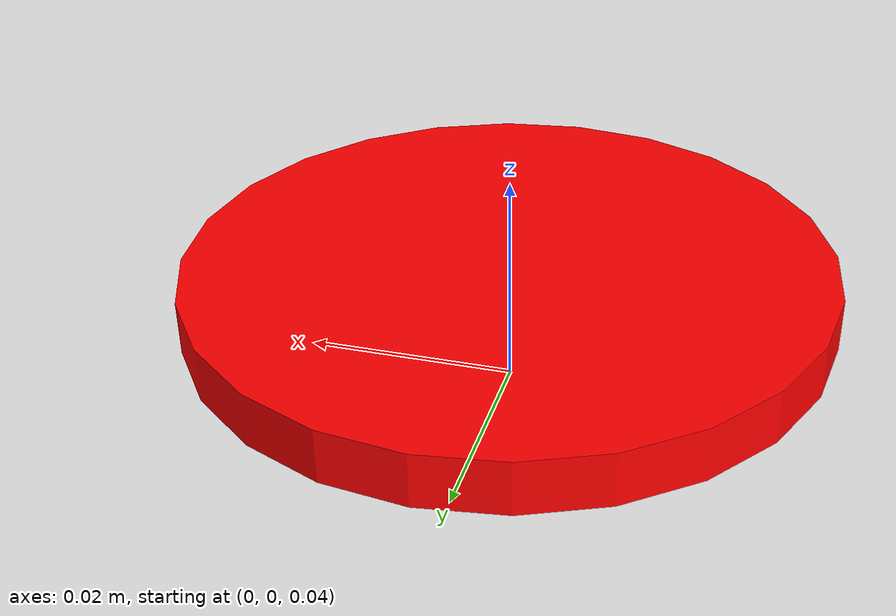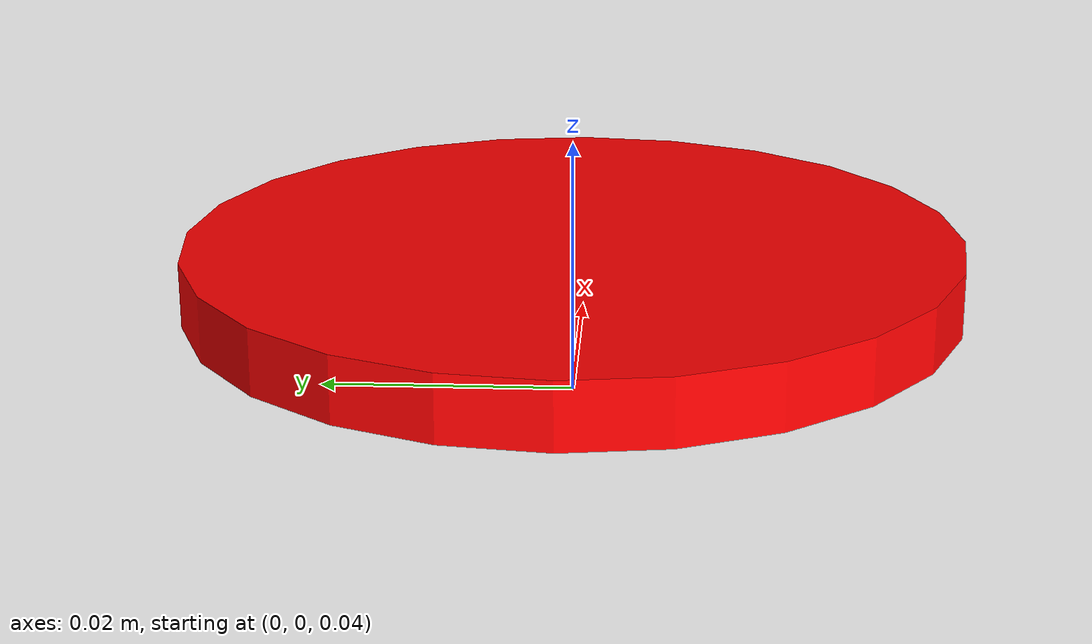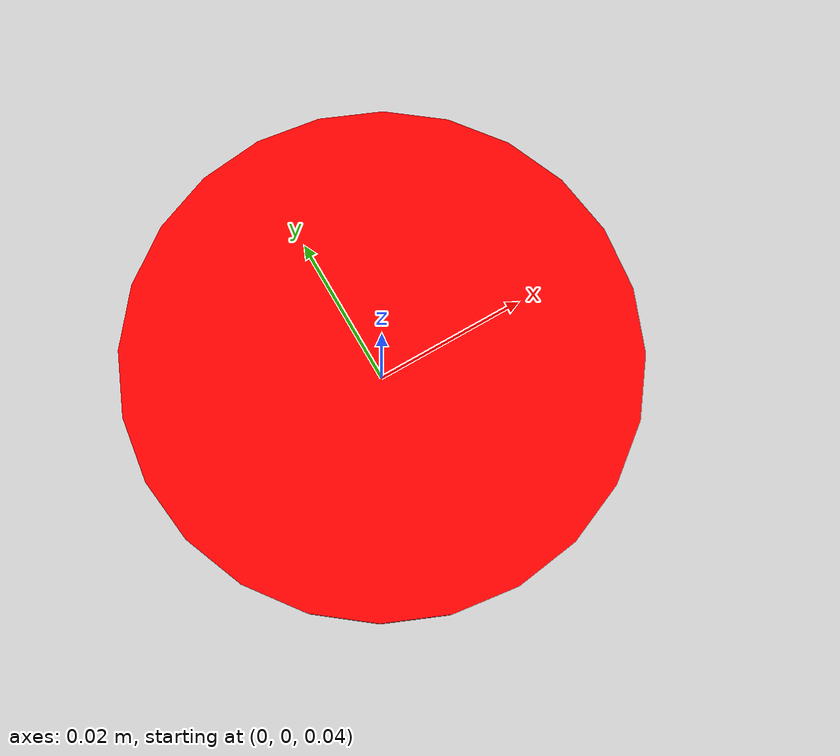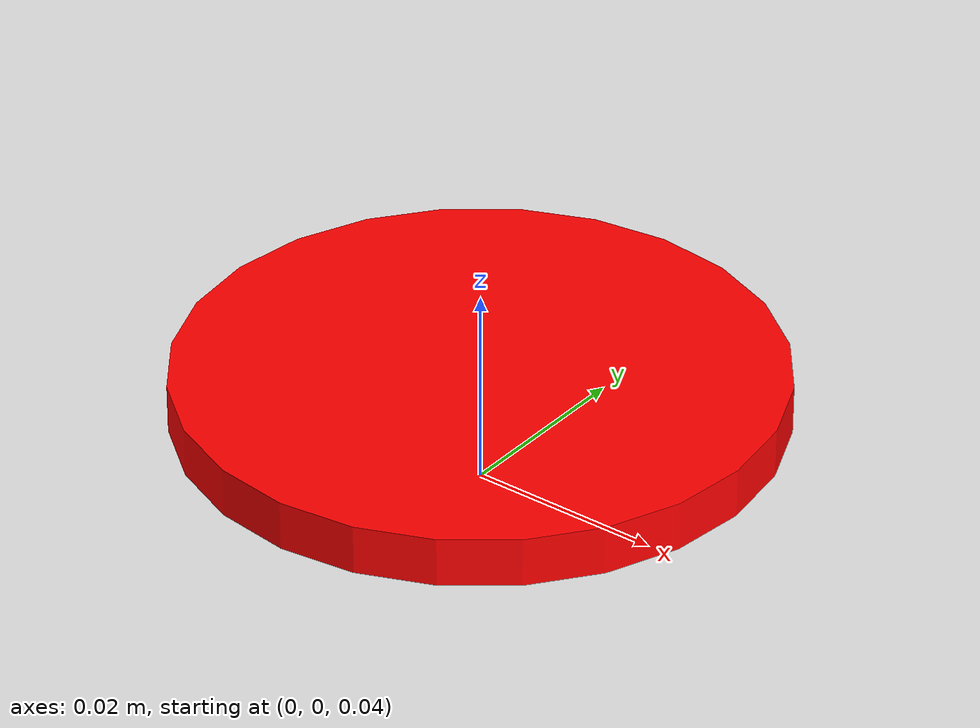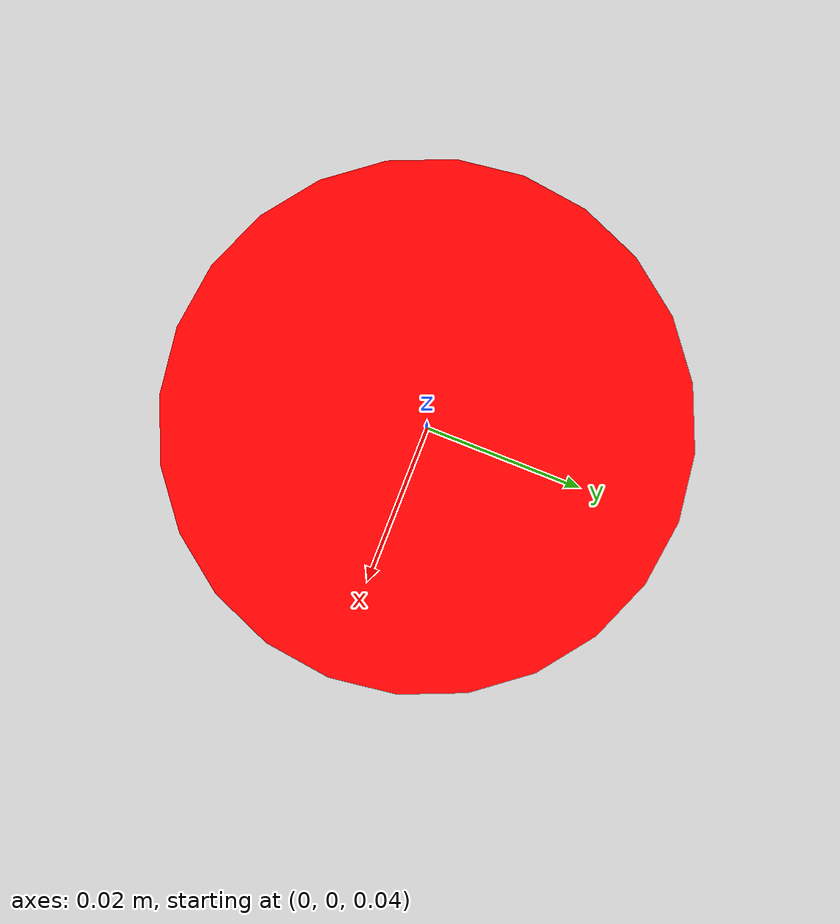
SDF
<?xml version="1.0" ?>
<sdf version="1.9">
  <model name="payload_cylinder">
    <pose>0 0 0.05 0 0 0</pose>

    <link name="payload_link">
      <inertial>
        <mass>0.1</mass>
        <inertia>
          <ixx>0.0001</ixx><ixy>0</ixy><ixz>0</ixz>
          <iyy>0.0001</iyy><iyz>0</iyz>
          <izz>0.0001</izz>
        </inertia>
      </inertial>

      <visual name="payload_visual">
        <geometry>
           <cylinder><radius>0.03</radius><length>0.005</length></cylinder>
        </geometry>
        <material>
          <ambient>1.0 0.0 0.0 1.0</ambient>
          <diffuse>1.0 0.0 0.0 1.0</diffuse>
          <specular>0.1 0.1 0.1 1.0</specular>
        </material>
      </visual>

      <collision name="payload_collision">
        <geometry>
           <cylinder><radius>0.029</radius><length>0.005</length></cylinder>
        </geometry>
      </collision>
    </link>
  </model>
</sdf>
